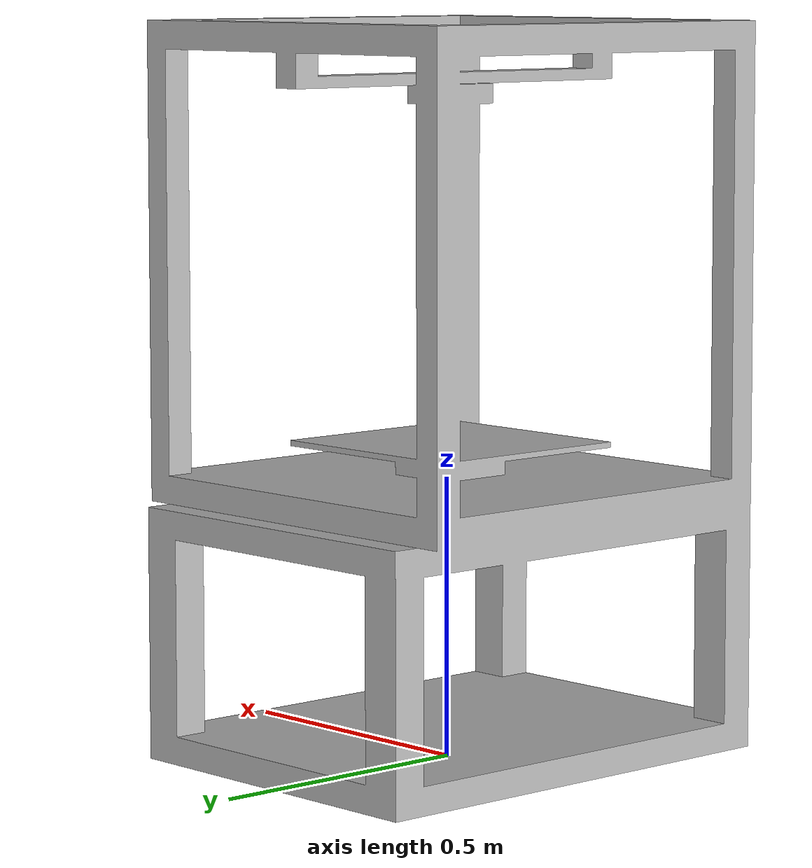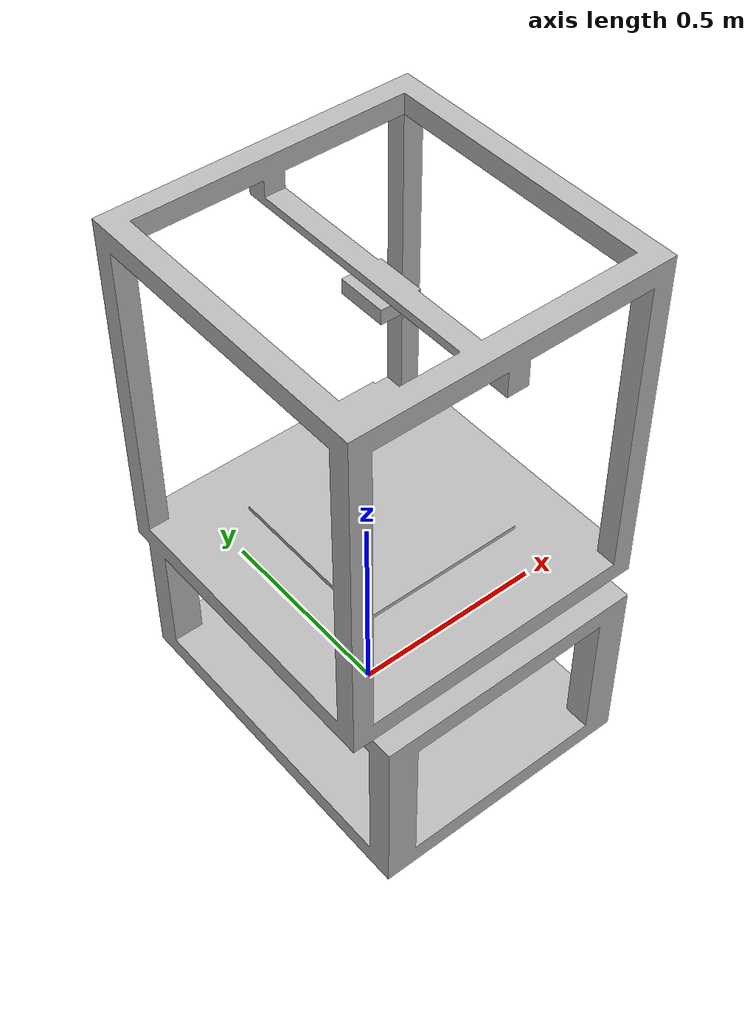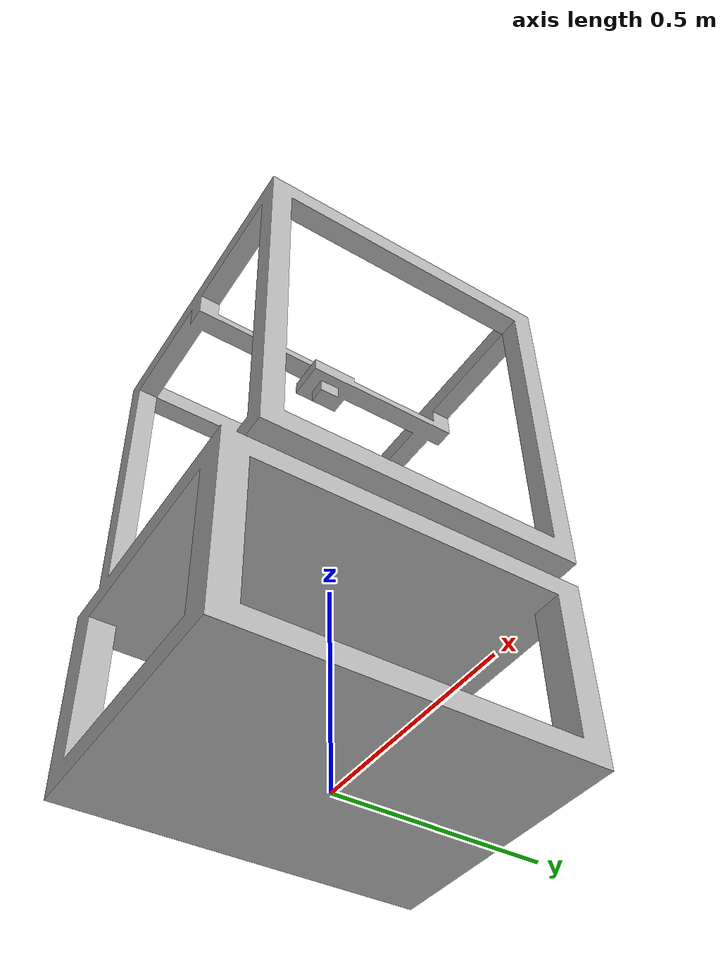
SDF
<?xml version='1.0'?>
<sdf version='1.6'>
  <model name="3D_printer">
<static>true</static>
<link name= "3D_printer">
<collision name= "3D_printer collision">

 <geometry>
   <mesh>
     <uri>model://3D_printer/meshes/3D_printer_with_base_simplified.obj</uri>
      <scale> 1 1 1</scale>
   </mesh>
</geometry>

</collision>

<visual name = "3D_printer bearing">
  <geometry>
   <mesh>
     <uri>model://3D_printer/meshes/3D_printer_with_base_simplified.obj</uri>
      <scale> 1 1 1</scale>
   </mesh>
</geometry>
</visual>
</link>
  </model>
</sdf>
